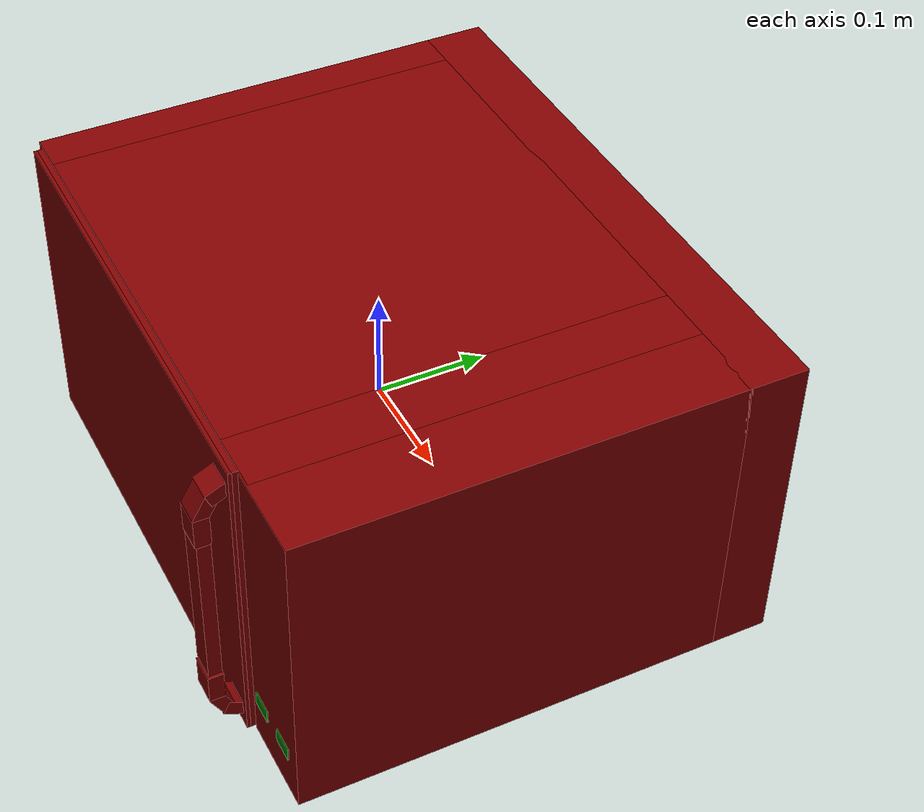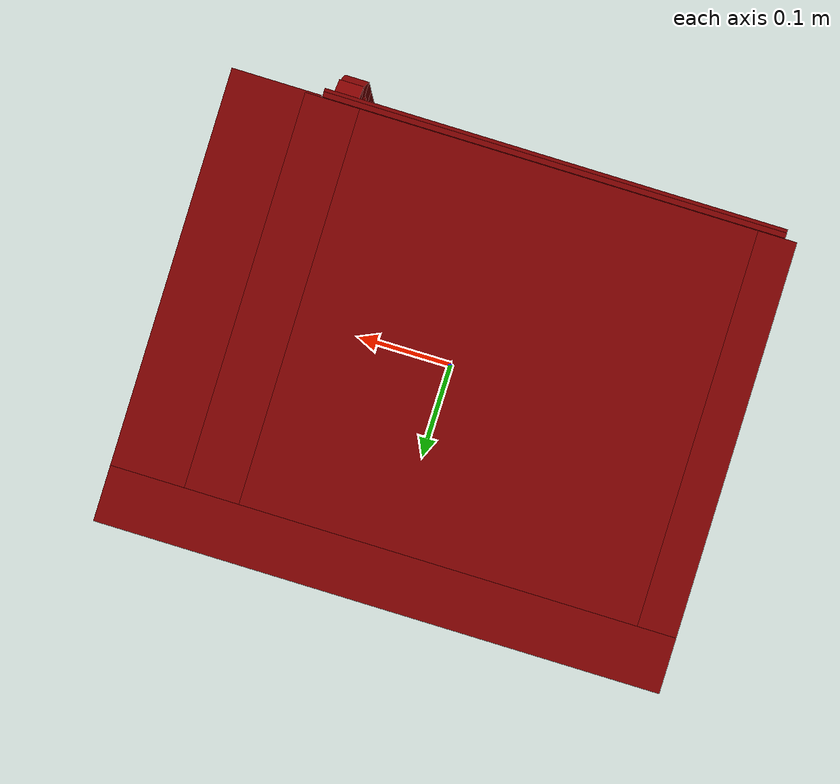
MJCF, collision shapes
<?xml version='1.0' encoding='UTF-8'?>
<mujoco model="model">
  <option timestep="0.002" gravity="0.0 0.0 -9.81"/>
  <compiler angle="radian"/>
  <asset>
    <mesh file="visuals/door.obj" name="door_vis"/>
    <mesh file="visuals/door_Clear.obj" name="door_Clear_vis"/>
    <mesh file="visuals/Body001.obj" name="Body001_vis"/>
    <mesh file="visuals/Disc001.obj" name="Disc001_vis"/>
    <texture file="visuals/T_BC001.png" name="Body001_material" type="2d"/>
    <material name="Body001_material" rgba="1 1 1 1.0" texture="Body001_material" shininess="0.4472135901451111" specular="0.5"/>
    <texture file="visuals/T_BC001.png" name="door_material" type="2d"/>
    <material name="door_material" rgba="1 1 1 1.0" texture="door_material" shininess="0.4472135901451111" specular="0.5"/>
    <texture file="visuals/T_BC001.png" name="door_Clear_material" type="2d"/>
    <material name="door_Clear_material" rgba="1 1 1 0.8469945192337036" texture="door_Clear_material" shininess="0.4472135901451111" specular="0.3103448502657381"/>
    <texture file="visuals/T_BC001.png" name="Disc001_material" type="2d"/>
    <material name="Disc001_material" rgba="1 1 1 1.0" texture="Disc001_material" shininess="0.4472135901451111" specular="0.5"/>
  </asset>
  <default>
    <default class="visual">
      <geom conaffinity="0" contype="0" group="1" type="mesh"/>
    </default>
    <default class="collision">
      <geom group="0" rgba="0.5 0 0 0.5"/>
    </default>
    <default class="spawn">
      <geom group="0" rgba="1 1 1 0.5" contype="0" conaffinity="0"/>
      <site group="0" rgba="1 1 1 0.5"/>
    </default>
    <default class="region">
      <geom group="1" conaffinity="0" contype="0" rgba="0 1 0 0"/>
    </default>
  </default>
  <worldbody>
    <body>
      <body name="object">
        <geom class="collision" type="box" pos="0.20688511 -0.20140959 -0.08837923" size="0.011203333735466003 0.0005456866347230971 0.006529494654387236" quat="1.0 0.0 0.0 0.0" name="start_button" rgba="0.0 0.5 0 0.5"/>
        <geom class="collision" type="box" pos="0.24758175 -0.20140959 -0.08837923" size="0.011203338392078876 0.0005456869257614017 0.006529499311000109" quat="1.0 0.0 0.0 0.0" name="stop_button" rgba="0.0 0.5 0 0.5"/>
        <geom class="collision" type="cylinder" pos="-0.04088518 -0.00769267 -0.12107181" size="0.16101673245429993 0.0022666649892926216" quat="1.0 0.0 0.0 0.0" name="tray" rgba="0 1 0 0.5"/>
        <geom mesh="Body001_vis" type="mesh" solimp="0.998 0.998 0.001" solref="0.001 1" friction="0.95 0.3 0.1" class="visual" material="Body001_material"/>
        <geom class="collision" type="box" pos="0.00000000 0.20615921 0.00486070" size="0.26994314789772034 0.026556527242064476 0.1437952220439911" quat="1.0 0.0 0.0 0.0"/>
        <geom class="collision" type="box" pos="-0.25133833 -0.00762603 0.00486070" size="0.018604833632707596 0.19010990858078003 0.1437952220439911" quat="1.0 0.0 0.0 0.0"/>
        <geom class="collision" type="box" pos="0.17348723 -0.00762603 0.00486070" size="0.026006774976849556 0.19010990858078003 0.1437952220439911" quat="1.0 0.0 0.0 0.0"/>
        <geom class="collision" type="box" pos="-0.01726867 -0.00762603 0.14332044" size="0.2167627066373825 0.19010990858078003 0.005335479509085417" quat="1.0 0.0 0.0 0.0"/>
        <geom class="collision" type="box" pos="-0.01726867 -0.00762603 -0.13509087" size="0.2167627066373825 0.19010990858078003 0.004102307837456465" quat="1.0 0.0 0.0 0.0"/>
        <geom class="collision" type="box" pos="0.22731711 -0.00846768 0.00486070" size="0.0426260307431221 0.19095154106616974 0.1437952220439911" quat="1.0 0.0 0.0 0.0"/>
        <geom class="collision" type="cylinder" pos="-0.18516758 0.17306202 -0.14190505" size="0.01037526410073042 0.006750664208084345" quat="1.0 0.0 0.0 0.0"/>
        <geom class="collision" type="cylinder" pos="0.16264436 0.17306202 -0.14190505" size="0.01037526410073042 0.006750664208084345" quat="1.0 0.0 0.0 0.0"/>
        <geom class="collision" type="cylinder" pos="0.16264436 -0.14608803 -0.14190505" size="0.01037526410073042 0.006750664208084345" quat="1.0 0.0 0.0 0.0"/>
        <geom class="collision" type="cylinder" pos="-0.18516758 -0.14608803 -0.14190505" size="0.01037526410073042 0.006750664208084345" quat="1.0 0.0 0.0 0.0"/>
        <body name="door">
          <joint axis="0.0 0.0 1.0" pos="-0.26554516 -0.20252347 0.00535504" limited="true" name="microjoint" range="-1.5707963267948966 0.0" type="hinge" damping="1" frictionloss="1" armature=".01" stiffness="0.05"/>
          <geom mesh="door_vis" type="mesh" solimp="0.998 0.998 0.001" solref="0.001 1" friction="0.95 0.3 0.1" class="visual" material="door_material"/>
          <geom class="collision" type="box" pos="-0.03756569 -0.20244173 0.00530048" size="0.22089003026485443 0.004169816616922617 0.14335528016090393" quat="1.0 0.0 0.0 0.0"/>
          <geom class="collision" type="box" pos="0.16431227 -0.22701576 0.00435505" size="0.011955862864851952 0.005856535397469997 0.07246973365545273" quat="1.0 0.0 0.0 0.0" name="door_handle_main"/>
          <geom class="collision" type="box" pos="0.16493176 -0.21124035 0.12515020" size="0.011907381936907768 0.010255555622279644 0.006392296869307756" quat="7.978625831128738e-07 4.85545058381831e-07 0.21992571651935577 -0.9755166172981262"/>
          <geom class="collision" type="box" pos="0.16460048 -0.22296725 0.11235357" size="0.0116716418415308 0.011197931133210659 0.006073447875678539" quat="9.661798827664825e-08 -6.952240596547199e-07 -0.5028786063194275 0.864357054233551"/>
          <geom class="collision" type="box" pos="0.16452757 -0.22717453 0.09143840" size="0.011830589734017849 0.006787508260458708 0.01344011165201664" quat="1.0 0.0 0.0 0.0"/>
          <geom class="collision" type="box" pos="0.16482906 -0.21124035 -0.11763681" size="0.012010076083242893 0.010255555622279644 0.006392296869307756" quat="0.9755166172981262 -0.21992571651935577 4.951577352585446e-07 7.552212082373444e-07"/>
          <geom class="collision" type="box" pos="0.16478385 -0.22296725 -0.10484018" size="0.011752326041460037 0.011197932064533234 0.006073447875678539" quat="0.864357054233551 -0.5028786063194275 7.707887448304973e-07 -5.265471969551072e-08"/>
          <geom class="collision" type="box" pos="0.16445422 -0.22717453 -0.08392499" size="0.012344039976596832 0.006787517108023167 0.013440113514661789" quat="1.0 0.0 0.0 0.0"/>
          <geom class="collision" type="box" pos="-0.04085507 -0.20431067 0.00567954" size="0.15795336663722992 0.0014338067267090082 0.09186302870512009" quat="1.0 0.0 0.0 0.0"/>
          <geom class="collision" type="box" pos="-0.03756569 -0.20500612 0.00530047" size="0.2208903431892395 0.0016054679872468114 0.14335541427135468" quat="1.0 0.0 0.0 0.0" name="door_main"/>
          <body name="door_Clear">
            <geom mesh="door_Clear_vis" type="mesh" solimp="0.998 0.998 0.001" solref="0.001 1" friction="0.95 0.3 0.1" class="visual" material="door_Clear_material"/>
            <geom class="collision" type="box" pos="-0.04085507 -0.20431067 0.00567954" size="0.15795336663722992 0.0014338067267090082 0.09186302870512009" quat="1.0 0.0 0.0 0.0"/>
          </body>
        </body>
        <body name="Disc001">
          <joint axis="0.0 0.0 1.0" pos="-0.04088516 -0.00769264 -0.12149373" limited="false" name="Disc001_joint" range="0 360" type="hinge" damping="1" frictionloss="1" armature=".01" stiffness="0.05"/>
          <geom mesh="Disc001_vis" type="mesh" solimp="0.998 0.998 0.001" solref="0.001 1" friction="0.95 0.3 0.1" class="visual" material="Disc001_material"/>
          <geom class="collision" type="cylinder" pos="-0.04088516 -0.00769267 -0.12742083" size="0.16115526854991913 0.001962974201887846" quat="1.0 0.0 0.0 0.0"/>
        </body>
        <geom class="region" name="reg_int" type="box" pos="-0.04202080500000001 -0.009418289999999996 0.006555034999999994" size="0.182046885 0.1812779 0.126330245"/>
        <geom class="region" name="reg_main" type="box" pos="-7.999999998564711e-08 0.013052089999999988 -2.3000000000383825e-07" size="0.27094312 0.22066368 0.14965615999999998"/>
      <geom class="region" name="reg_tray" type="cylinder" pos="-0.04088518 -0.00769267 0.007040067494646307" size="0.16101673245429993 0.12484521250535369"/></body>
    </body>
  </worldbody>
  <actuator>
    <motor name="microjoint_actuator" joint="microjoint" gear="10"/>
    <motor name="Disc001_joint_actuator" joint="Disc001_joint" gear="10"/>
  </actuator>
</mujoco>
